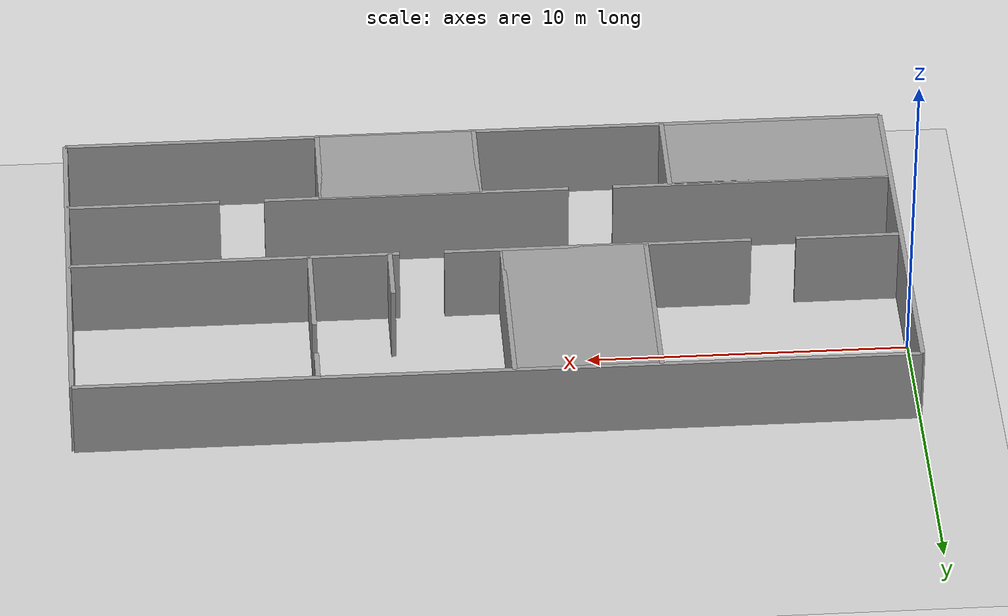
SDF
<sdf version="1.7">
 <world name="lab_world">
  <gravity>0 0 -9.8</gravity>
  <physics type="ode">
   <max_step_size>0.001</max_step_size>
   <real_time_factor>1</real_time_factor>
   <real_time_update_rate>1000</real_time_update_rate>
  </physics>
  <scene><ambient>0.4 0.4 0.4 1</ambient><background>0.7 0.7 0.7 1</background><shadows>0</shadows></scene>
  <light type="directional" name="sun">
   <pose>0 0 12 0 -0 0</pose>
   <diffuse>0.8 0.8 0.8 1</diffuse>
   <specular>0.2 0.2 0.2 1</specular>
   <attenuation>
    <range>1000</range>
    <constant>0.9</constant>
    <linear>0.01</linear>
    <quadratic>0.001</quadratic>
   </attenuation>
   <direction>-0.5 0.1 -0.9</direction>
  </light>
  <include><uri>model://ground_plane</uri><name>ground_plane</name></include>
  <model name="env06_gate_nested">
   <static>1</static>
   <link name="wall_00">
    <pose>13.0000 3.4000 1.250 0 -0 0</pose>
    <collision name="collision"><geometry><box><size>26.0000 0.1500 2.50</size></box></geometry></collision>
    <visual name="visual">
     <geometry><box><size>26.0000 0.1500 2.50</size></box></geometry>
     <material>
      <script><uri>file://media/materials/scripts/gazebo.material</uri><name>Gazebo/Grey</name></script>
     </material>
    </visual>
   </link>
   <link name="wall_01">
    <pose>13.0000 -8.8000 1.250 0 -0 0</pose>
    <collision name="collision"><geometry><box><size>26.0000 0.1500 2.50</size></box></geometry></collision>
    <visual name="visual">
     <geometry><box><size>26.0000 0.1500 2.50</size></box></geometry>
     <material>
      <script><uri>file://media/materials/scripts/gazebo.material</uri><name>Gazebo/Grey</name></script>
     </material>
    </visual>
   </link>
   <link name="wall_02">
    <pose>0.0000 -2.7000 1.250 0 -0 0</pose>
    <collision name="collision"><geometry><box><size>0.1500 12.2000 2.50</size></box></geometry></collision>
    <visual name="visual">
     <geometry><box><size>0.1500 12.2000 2.50</size></box></geometry>
     <material>
      <script><uri>file://media/materials/scripts/gazebo.material</uri><name>Gazebo/Grey</name></script>
     </material>
    </visual>
   </link>
   <link name="wall_03">
    <pose>26.0000 -2.7000 1.250 0 -0 0</pose>
    <collision name="collision"><geometry><box><size>0.1500 12.2000 2.50</size></box></geometry></collision>
    <visual name="visual">
     <geometry><box><size>0.1500 12.2000 2.50</size></box></geometry>
     <material>
      <script><uri>file://media/materials/scripts/gazebo.material</uri><name>Gazebo/Grey</name></script>
     </material>
    </visual>
   </link>
   <link name="wall_04">
    <pose>1.6500 -2.6000 1.250 0 -0 0</pose>
    <collision name="collision"><geometry><box><size>3.3000 0.1500 2.50</size></box></geometry></collision>
    <visual name="visual">
     <geometry><box><size>3.3000 0.1500 2.50</size></box></geometry>
     <material>
      <script><uri>file://media/materials/scripts/gazebo.material</uri><name>Gazebo/Grey</name></script>
     </material>
    </visual>
   </link>
   <link name="wall_05">
    <pose>9.5000 -2.6000 1.250 0 -0 0</pose>
    <collision name="collision"><geometry><box><size>9.6000 0.1500 2.50</size></box></geometry></collision>
    <visual name="visual">
     <geometry><box><size>9.6000 0.1500 2.50</size></box></geometry>
     <material>
      <script><uri>file://media/materials/scripts/gazebo.material</uri><name>Gazebo/Grey</name></script>
     </material>
    </visual>
   </link>
   <link name="wall_06">
    <pose>20.8500 -2.6000 1.250 0 -0 0</pose>
    <collision name="collision"><geometry><box><size>10.3000 0.1500 2.50</size></box></geometry></collision>
    <visual name="visual">
     <geometry><box><size>10.3000 0.1500 2.50</size></box></geometry>
     <material>
      <script><uri>file://media/materials/scripts/gazebo.material</uri><name>Gazebo/Grey</name></script>
     </material>
    </visual>
   </link>
   <link name="wall_07">
    <pose>4.4000 -5.6000 1.250 0 -0 0</pose>
    <collision name="collision"><geometry><box><size>8.8000 0.1500 2.50</size></box></geometry></collision>
    <visual name="visual">
     <geometry><box><size>8.8000 0.1500 2.50</size></box></geometry>
     <material>
      <script><uri>file://media/materials/scripts/gazebo.material</uri><name>Gazebo/Grey</name></script>
     </material>
    </visual>
   </link>
   <link name="wall_08">
    <pose>15.0000 -5.6000 1.250 0 -0 0</pose>
    <collision name="collision"><geometry><box><size>9.6000 0.1500 2.50</size></box></geometry></collision>
    <visual name="visual">
     <geometry><box><size>9.6000 0.1500 2.50</size></box></geometry>
     <material>
      <script><uri>file://media/materials/scripts/gazebo.material</uri><name>Gazebo/Grey</name></script>
     </material>
    </visual>
   </link>
   <link name="wall_09">
    <pose>23.6000 -5.6000 1.250 0 -0 0</pose>
    <collision name="collision"><geometry><box><size>4.8000 0.1500 2.50</size></box></geometry></collision>
    <visual name="visual">
     <geometry><box><size>4.8000 0.1500 2.50</size></box></geometry>
     <material>
      <script><uri>file://media/materials/scripts/gazebo.material</uri><name>Gazebo/Grey</name></script>
     </material>
    </visual>
   </link>
   <link name="wall_10">
    <pose>8.0000 0.4000 1.250 0 -0 0</pose>
    <collision name="collision"><geometry><box><size>0.1500 6.0000 2.50</size></box></geometry></collision>
    <visual name="visual">
     <geometry><box><size>0.1500 6.0000 2.50</size></box></geometry>
     <material>
      <script><uri>file://media/materials/scripts/gazebo.material</uri><name>Gazebo/Grey</name></script>
     </material>
    </visual>
   </link>
   <link name="wall_11">
    <pose>12.5000 0.4000 1.250 0 -0 0</pose>
    <collision name="collision"><geometry><box><size>0.1500 6.0000 2.50</size></box></geometry></collision>
    <visual name="visual">
     <geometry><box><size>0.1500 6.0000 2.50</size></box></geometry>
     <material>
      <script><uri>file://media/materials/scripts/gazebo.material</uri><name>Gazebo/Grey</name></script>
     </material>
    </visual>
   </link>
   <link name="wall_12">
    <pose>18.5000 -0.9000 1.250 0 -0 0</pose>
    <collision name="collision"><geometry><box><size>0.1500 3.4000 2.50</size></box></geometry></collision>
    <visual name="visual">
     <geometry><box><size>0.1500 3.4000 2.50</size></box></geometry>
     <material>
      <script><uri>file://media/materials/scripts/gazebo.material</uri><name>Gazebo/Grey</name></script>
     </material>
    </visual>
   </link>
   <link name="wall_13">
    <pose>18.5000 2.8000 1.250 0 -0 0</pose>
    <collision name="collision"><geometry><box><size>0.1500 1.2000 2.50</size></box></geometry></collision>
    <visual name="visual">
     <geometry><box><size>0.1500 1.2000 2.50</size></box></geometry>
     <material>
      <script><uri>file://media/materials/scripts/gazebo.material</uri><name>Gazebo/Grey</name></script>
     </material>
    </visual>
   </link>
   <link name="wall_14">
    <pose>16.0000 -1.6000 1.250 0 -0 0</pose>
    <collision name="collision"><geometry><box><size>0.1500 2.0000 2.50</size></box></geometry></collision>
    <visual name="visual">
     <geometry><box><size>0.1500 2.0000 2.50</size></box></geometry>
     <material>
      <script><uri>file://media/materials/scripts/gazebo.material</uri><name>Gazebo/Grey</name></script>
     </material>
    </visual>
   </link>
   <link name="wall_15">
    <pose>7.0000 -7.2000 1.250 0 -0 0</pose>
    <collision name="collision"><geometry><box><size>0.1500 3.2000 2.50</size></box></geometry></collision>
    <visual name="visual">
     <geometry><box><size>0.1500 3.2000 2.50</size></box></geometry>
     <material>
      <script><uri>file://media/materials/scripts/gazebo.material</uri><name>Gazebo/Grey</name></script>
     </material>
    </visual>
   </link>
   <link name="wall_16">
    <pose>13.0000 -7.2000 1.250 0 -0 0</pose>
    <collision name="collision"><geometry><box><size>0.1500 3.2000 2.50</size></box></geometry></collision>
    <visual name="visual">
     <geometry><box><size>0.1500 3.2000 2.50</size></box></geometry>
     <material>
      <script><uri>file://media/materials/scripts/gazebo.material</uri><name>Gazebo/Grey</name></script>
     </material>
    </visual>
   </link>
   <link name="wall_17">
    <pose>18.0000 -7.2000 1.250 0 -0 0</pose>
    <collision name="collision"><geometry><box><size>0.1500 3.2000 2.50</size></box></geometry></collision>
    <visual name="visual">
     <geometry><box><size>0.1500 3.2000 2.50</size></box></geometry>
     <material>
      <script><uri>file://media/materials/scripts/gazebo.material</uri><name>Gazebo/Grey</name></script>
     </material>
    </visual>
   </link>
   <link name="wall_18">
    <pose>10.2500 0.4000 1.250 0 -0 0</pose>
    <collision name="collision"><geometry><box><size>4.5000 6.0000 2.50</size></box></geometry></collision>
    <visual name="visual">
     <geometry><box><size>4.5000 6.0000 2.50</size></box></geometry>
     <material>
      <script><uri>file://media/materials/scripts/gazebo.material</uri><name>Gazebo/Grey</name></script>
     </material>
    </visual>
   </link>
   <link name="wall_19">
    <pose>3.5000 -7.2000 1.250 0 -0 0</pose>
    <collision name="collision"><geometry><box><size>7.0000 3.2000 2.50</size></box></geometry></collision>
    <visual name="visual">
     <geometry><box><size>7.0000 3.2000 2.50</size></box></geometry>
     <material>
      <script><uri>file://media/materials/scripts/gazebo.material</uri><name>Gazebo/Grey</name></script>
     </material>
    </visual>
   </link>
   <link name="wall_20">
    <pose>15.5000 -7.2000 1.250 0 -0 0</pose>
    <collision name="collision"><geometry><box><size>5.0000 3.2000 2.50</size></box></geometry></collision>
    <visual name="visual">
     <geometry><box><size>5.0000 3.2000 2.50</size></box></geometry>
     <material>
      <script><uri>file://media/materials/scripts/gazebo.material</uri><name>Gazebo/Grey</name></script>
     </material>
    </visual>
   </link>
  </model>
 </world>
</sdf>
